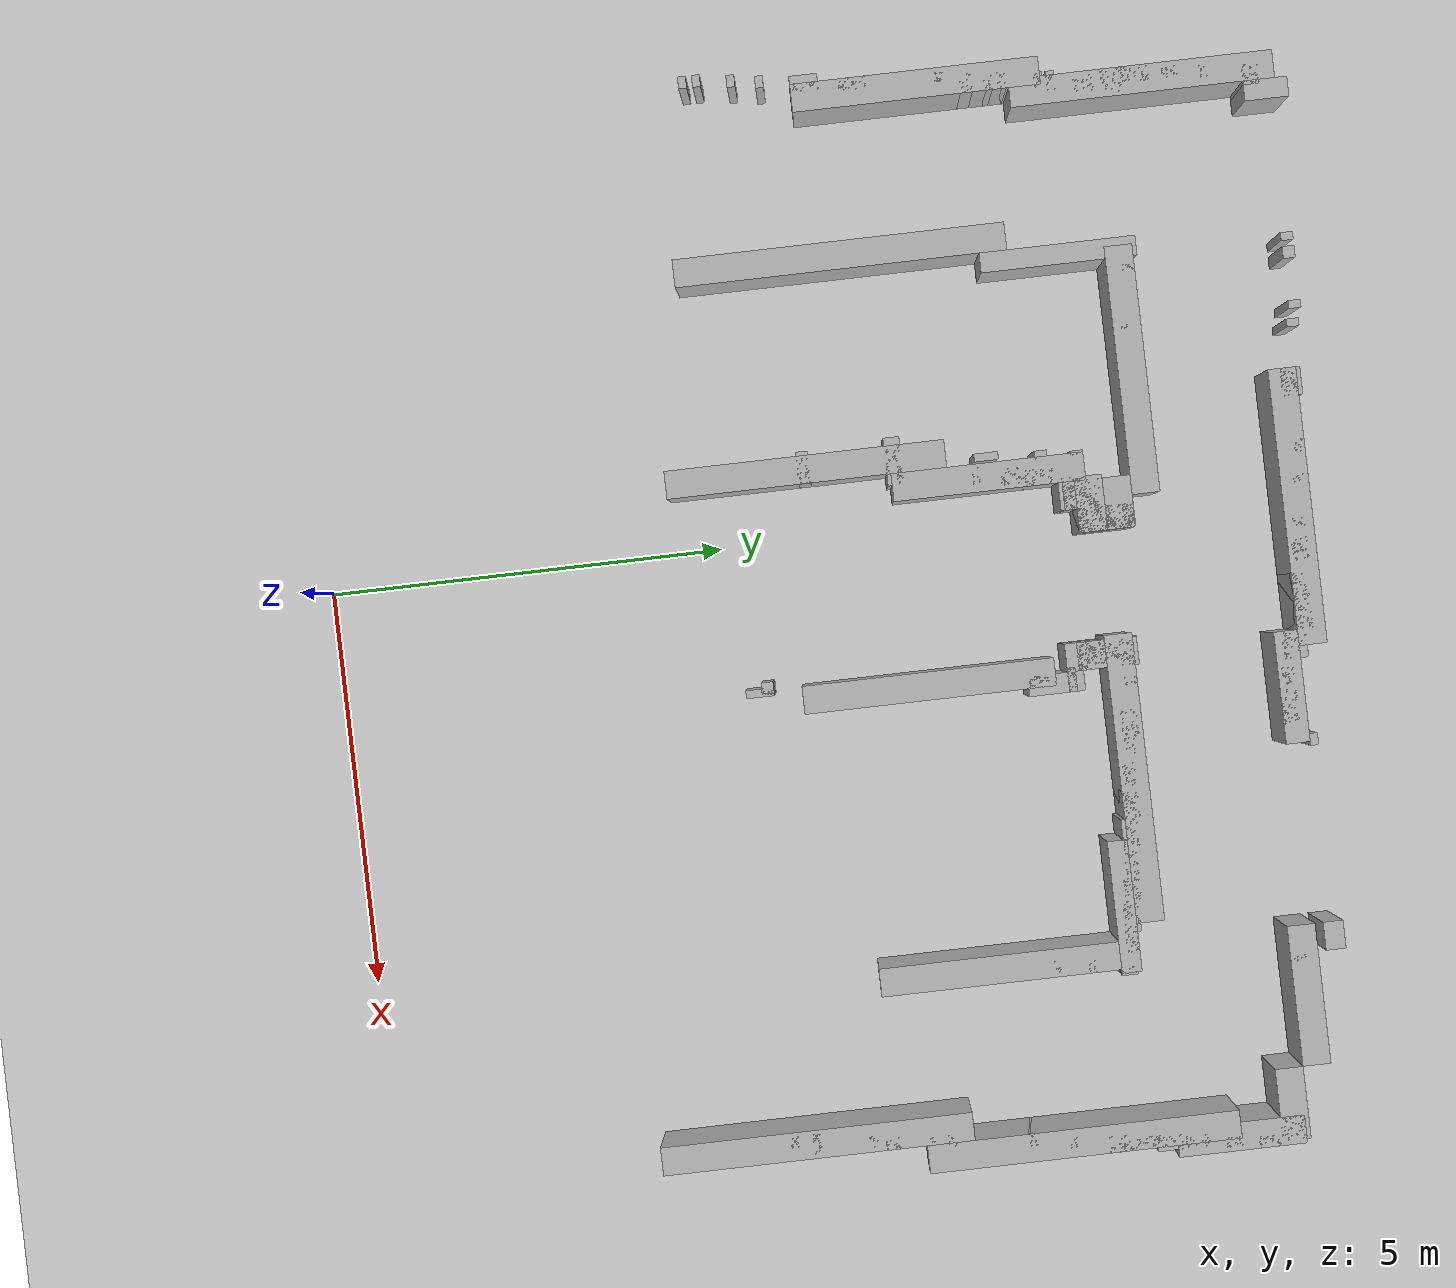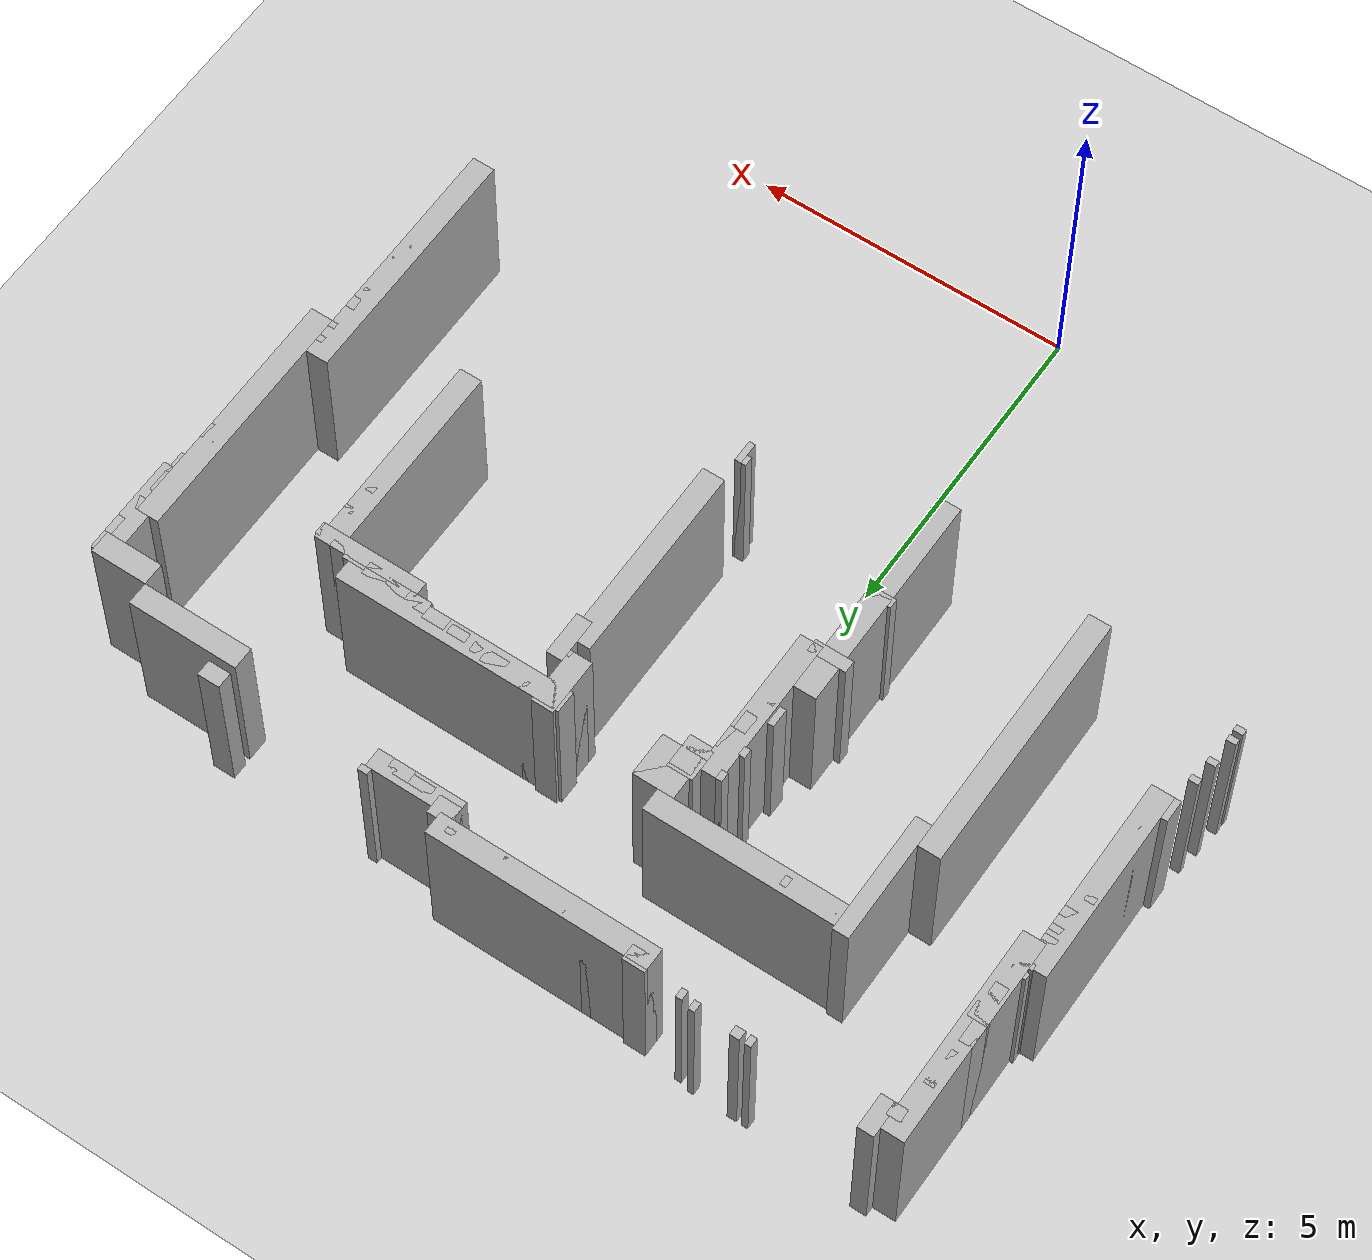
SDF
<sdf version="1.9">
 <world name="real_map_big_fix">
  <model name="ground_plane">
   <static>true</static>
   <link name="link">
    <collision name="collision">
     <geometry><plane><normal>0 0 1</normal><size>100 100</size></plane></geometry>
    </collision>
    <visual name="visual">
     <geometry><plane><normal>0 0 1</normal><size>100 100</size></plane></geometry>
     <material><ambient>0.8 0.8 0.8 1</ambient><diffuse>0.8 0.8 0.8 1</diffuse></material>
    </visual>
   </link>
  </model>
  <model name="wall_h_262">
   <static>true</static>
   <pose>0.3020 12.2120 1.2500 0 0 0</pose>
   <link name="link">
    <collision name="collision"><geometry><box><size>3.4500 0.3500 2.5000</size></box></geometry></collision>
    <visual name="visual">
     <geometry><box><size>3.4500 0.3500 2.5000</size></box></geometry>
     <material><ambient>0.7 0.7 0.7 1</ambient><diffuse>0.7 0.7 0.7 1</diffuse></material>
    </visual>
   </link>
  </model>
  <model name="wall_h_263">
   <static>true</static>
   <pose>-5.0980 12.2370 1.2500 0 0 0</pose>
   <link name="link">
    <collision name="collision"><geometry><box><size>0.2500 0.2000 2.5000</size></box></geometry></collision>
    <visual name="visual">
     <geometry><box><size>0.2500 0.2000 2.5000</size></box></geometry>
     <material><ambient>0.7 0.7 0.7 1</ambient><diffuse>0.7 0.7 0.7 1</diffuse></material>
    </visual>
   </link>
  </model>
  <model name="wall_h_264">
   <static>true</static>
   <pose>5.6520 12.0620 1.2500 0 0 0</pose>
   <link name="link">
    <collision name="collision"><geometry><box><size>0.3500 0.2500 2.5000</size></box></geometry></collision>
    <visual name="visual">
     <geometry><box><size>0.3500 0.2500 2.5000</size></box></geometry>
     <material><ambient>0.7 0.7 0.7 1</ambient><diffuse>0.7 0.7 0.7 1</diffuse></material>
    </visual>
   </link>
  </model>
  <model name="wall_h_265">
   <static>true</static>
   <pose>3.2020 12.0870 1.2500 0 0 0</pose>
   <link name="link">
    <collision name="collision"><geometry><box><size>0.1500 0.1000 2.5000</size></box></geometry></collision>
    <visual name="visual">
     <geometry><box><size>0.1500 0.1000 2.5000</size></box></geometry>
     <material><ambient>0.7 0.7 0.7 1</ambient><diffuse>0.7 0.7 0.7 1</diffuse></material>
    </visual>
   </link>
  </model>
  <model name="wall_h_266">
   <static>true</static>
   <pose>2.5270 11.8870 1.2500 0 0 0</pose>
   <link name="link">
    <collision name="collision"><geometry><box><size>1.4000 0.3000 2.5000</size></box></geometry></collision>
    <visual name="visual">
     <geometry><box><size>1.4000 0.3000 2.5000</size></box></geometry>
     <material><ambient>0.7 0.7 0.7 1</ambient><diffuse>0.7 0.7 0.7 1</diffuse></material>
    </visual>
   </link>
  </model>
  <model name="wall_h_267">
   <static>true</static>
   <pose>6.3520 11.6620 1.2500 0 0 0</pose>
   <link name="link">
    <collision name="collision"><geometry><box><size>1.7500 0.3500 2.5000</size></box></geometry></collision>
    <visual name="visual">
     <geometry><box><size>1.7500 0.3500 2.5000</size></box></geometry>
     <material><ambient>0.7 0.7 0.7 1</ambient><diffuse>0.7 0.7 0.7 1</diffuse></material>
    </visual>
   </link>
  </model>
  <model name="wall_h_268">
   <static>true</static>
   <pose>-5.1980 11.6620 1.2500 0 0 0</pose>
   <link name="link">
    <collision name="collision"><geometry><box><size>0.1500 0.1000 2.5000</size></box></geometry></collision>
    <visual name="visual">
     <geometry><box><size>0.1500 0.1000 2.5000</size></box></geometry>
     <material><ambient>0.7 0.7 0.7 1</ambient><diffuse>0.7 0.7 0.7 1</diffuse></material>
    </visual>
   </link>
  </model>
  <model name="wall_h_269">
   <static>true</static>
   <pose>7.6770 11.3120 1.2500 0 0 0</pose>
   <link name="link">
    <collision name="collision"><geometry><box><size>0.9000 0.3500 2.5000</size></box></geometry></collision>
    <visual name="visual">
     <geometry><box><size>0.9000 0.3500 2.5000</size></box></geometry>
     <material><ambient>0.7 0.7 0.7 1</ambient><diffuse>0.7 0.7 0.7 1</diffuse></material>
    </visual>
   </link>
  </model>
  <model name="wall_h_270">
   <static>true</static>
   <pose>-5.2480 11.2370 1.2500 0 0 0</pose>
   <link name="link">
    <collision name="collision"><geometry><box><size>0.1500 0.2000 2.5000</size></box></geometry></collision>
    <visual name="visual">
     <geometry><box><size>0.1500 0.2000 2.5000</size></box></geometry>
     <material><ambient>0.7 0.7 0.7 1</ambient><diffuse>0.7 0.7 0.7 1</diffuse></material>
    </visual>
   </link>
  </model>
  <model name="wall_h_271">
   <static>true</static>
   <pose>8.1020 10.9870 1.2500 0 0 0</pose>
   <link name="link">
    <collision name="collision"><geometry><box><size>0.1500 0.3000 2.5000</size></box></geometry></collision>
    <visual name="visual">
     <geometry><box><size>0.1500 0.3000 2.5000</size></box></geometry>
     <material><ambient>0.7 0.7 0.7 1</ambient><diffuse>0.7 0.7 0.7 1</diffuse></material>
    </visual>
   </link>
  </model>
  <model name="wall_h_272">
   <static>true</static>
   <pose>-5.2730 10.8120 1.2500 0 0 0</pose>
   <link name="link">
    <collision name="collision"><geometry><box><size>0.2000 0.3500 2.5000</size></box></geometry></collision>
    <visual name="visual">
     <geometry><box><size>0.2000 0.3500 2.5000</size></box></geometry>
     <material><ambient>0.7 0.7 0.7 1</ambient><diffuse>0.7 0.7 0.7 1</diffuse></material>
    </visual>
   </link>
  </model>
  <model name="wall_h_273">
   <static>true</static>
   <pose>-5.2230 10.5120 1.2500 0 0 0</pose>
   <link name="link">
    <collision name="collision"><geometry><box><size>0.3000 0.2500 2.5000</size></box></geometry></collision>
    <visual name="visual">
     <geometry><box><size>0.3000 0.2500 2.5000</size></box></geometry>
     <material><ambient>0.7 0.7 0.7 1</ambient><diffuse>0.7 0.7 0.7 1</diffuse></material>
    </visual>
   </link>
  </model>
  <model name="wall_h_274">
   <static>true</static>
   <pose>8.0520 10.5370 1.2500 0 0 0</pose>
   <link name="link">
    <collision name="collision"><geometry><box><size>0.1500 0.2000 2.5000</size></box></geometry></collision>
    <visual name="visual">
     <geometry><box><size>0.1500 0.2000 2.5000</size></box></geometry>
     <material><ambient>0.7 0.7 0.7 1</ambient><diffuse>0.7 0.7 0.7 1</diffuse></material>
    </visual>
   </link>
  </model>
  <model name="wall_h_275">
   <static>true</static>
   <pose>-1.6230 10.3620 1.2500 0 0 0</pose>
   <link name="link">
    <collision name="collision"><geometry><box><size>3.1000 0.3500 2.5000</size></box></geometry></collision>
    <visual name="visual">
     <geometry><box><size>3.1000 0.3500 2.5000</size></box></geometry>
     <material><ambient>0.7 0.7 0.7 1</ambient><diffuse>0.7 0.7 0.7 1</diffuse></material>
    </visual>
   </link>
  </model>
  <model name="wall_h_276">
   <static>true</static>
   <pose>-5.2230 10.1620 1.2500 0 0 0</pose>
   <link name="link">
    <collision name="collision"><geometry><box><size>0.2000 0.2500 2.5000</size></box></geometry></collision>
    <visual name="visual">
     <geometry><box><size>0.2000 0.2500 2.5000</size></box></geometry>
     <material><ambient>0.7 0.7 0.7 1</ambient><diffuse>0.7 0.7 0.7 1</diffuse></material>
    </visual>
   </link>
  </model>
  <model name="wall_h_277">
   <static>true</static>
   <pose>8.0020 10.1120 1.2500 0 0 0</pose>
   <link name="link">
    <collision name="collision"><geometry><box><size>0.1500 0.3500 2.5000</size></box></geometry></collision>
    <visual name="visual">
     <geometry><box><size>0.1500 0.3500 2.5000</size></box></geometry>
     <material><ambient>0.7 0.7 0.7 1</ambient><diffuse>0.7 0.7 0.7 1</diffuse></material>
    </visual>
   </link>
  </model>
  <model name="wall_h_278">
   <static>true</static>
   <pose>0.0020 10.0120 1.2500 0 0 0</pose>
   <link name="link">
    <collision name="collision"><geometry><box><size>0.6500 0.3500 2.5000</size></box></geometry></collision>
    <visual name="visual">
     <geometry><box><size>0.6500 0.3500 2.5000</size></box></geometry>
     <material><ambient>0.7 0.7 0.7 1</ambient><diffuse>0.7 0.7 0.7 1</diffuse></material>
    </visual>
   </link>
  </model>
  <model name="wall_h_279">
   <static>true</static>
   <pose>3.4270 9.8120 1.2500 0 0 0</pose>
   <link name="link">
    <collision name="collision"><geometry><box><size>3.6000 0.3500 2.5000</size></box></geometry></collision>
    <visual name="visual">
     <geometry><box><size>3.6000 0.3500 2.5000</size></box></geometry>
     <material><ambient>0.7 0.7 0.7 1</ambient><diffuse>0.7 0.7 0.7 1</diffuse></material>
    </visual>
   </link>
  </model>
  <model name="wall_h_280">
   <static>true</static>
   <pose>7.9770 9.7620 1.2500 0 0 0</pose>
   <link name="link">
    <collision name="collision"><geometry><box><size>0.2000 0.3500 2.5000</size></box></geometry></collision>
    <visual name="visual">
     <geometry><box><size>0.2000 0.3500 2.5000</size></box></geometry>
     <material><ambient>0.7 0.7 0.7 1</ambient><diffuse>0.7 0.7 0.7 1</diffuse></material>
    </visual>
   </link>
  </model>
  <model name="wall_h_281">
   <static>true</static>
   <pose>-0.0230 9.6620 1.2500 0 0 0</pose>
   <link name="link">
    <collision name="collision"><geometry><box><size>0.7000 0.3500 2.5000</size></box></geometry></collision>
    <visual name="visual">
     <geometry><box><size>0.7000 0.3500 2.5000</size></box></geometry>
     <material><ambient>0.7 0.7 0.7 1</ambient><diffuse>0.7 0.7 0.7 1</diffuse></material>
    </visual>
   </link>
  </model>
  <model name="wall_h_282">
   <static>true</static>
   <pose>-5.2980 9.7620 1.2500 0 0 0</pose>
   <link name="link">
    <collision name="collision"><geometry><box><size>0.2500 0.1000 2.5000</size></box></geometry></collision>
    <visual name="visual">
     <geometry><box><size>0.2500 0.1000 2.5000</size></box></geometry>
     <material><ambient>0.7 0.7 0.7 1</ambient><diffuse>0.7 0.7 0.7 1</diffuse></material>
    </visual>
   </link>
  </model>
  <model name="wall_h_283">
   <static>true</static>
   <pose>-5.3230 9.6120 1.2500 0 0 0</pose>
   <link name="link">
    <collision name="collision"><geometry><box><size>0.2000 0.1000 2.5000</size></box></geometry></collision>
    <visual name="visual">
     <geometry><box><size>0.2000 0.1000 2.5000</size></box></geometry>
     <material><ambient>0.7 0.7 0.7 1</ambient><diffuse>0.7 0.7 0.7 1</diffuse></material>
    </visual>
   </link>
  </model>
  <model name="wall_h_284">
   <static>true</static>
   <pose>1.8520 9.4620 1.2500 0 0 0</pose>
   <link name="link">
    <collision name="collision"><geometry><box><size>0.3500 0.3500 2.5000</size></box></geometry></collision>
    <visual name="visual">
     <geometry><box><size>0.3500 0.3500 2.5000</size></box></geometry>
     <material><ambient>0.7 0.7 0.7 1</ambient><diffuse>0.7 0.7 0.7 1</diffuse></material>
    </visual>
   </link>
  </model>
  <model name="wall_h_285">
   <static>true</static>
   <pose>5.0020 9.5120 1.2500 0 0 0</pose>
   <link name="link">
    <collision name="collision"><geometry><box><size>1.6500 0.2500 2.5000</size></box></geometry></collision>
    <visual name="visual">
     <geometry><box><size>1.6500 0.2500 2.5000</size></box></geometry>
     <material><ambient>0.7 0.7 0.7 1</ambient><diffuse>0.7 0.7 0.7 1</diffuse></material>
    </visual>
   </link>
  </model>
  <model name="wall_h_286">
   <static>true</static>
   <pose>7.9520 9.4120 1.2500 0 0 0</pose>
   <link name="link">
    <collision name="collision"><geometry><box><size>0.1500 0.3500 2.5000</size></box></geometry></collision>
    <visual name="visual">
     <geometry><box><size>0.1500 0.3500 2.5000</size></box></geometry>
     <material><ambient>0.7 0.7 0.7 1</ambient><diffuse>0.7 0.7 0.7 1</diffuse></material>
    </visual>
   </link>
  </model>
  <model name="wall_h_287">
   <static>true</static>
   <pose>-0.1730 9.4120 1.2500 0 0 0</pose>
   <link name="link">
    <collision name="collision"><geometry><box><size>0.4000 0.1500 2.5000</size></box></geometry></collision>
    <visual name="visual">
     <geometry><box><size>0.4000 0.1500 2.5000</size></box></geometry>
     <material><ambient>0.7 0.7 0.7 1</ambient><diffuse>0.7 0.7 0.7 1</diffuse></material>
    </visual>
   </link>
  </model>
  <model name="wall_h_288">
   <static>true</static>
   <pose>-0.4230 9.0620 1.2500 0 0 0</pose>
   <link name="link">
    <collision name="collision"><geometry><box><size>0.2000 0.3500 2.5000</size></box></geometry></collision>
    <visual name="visual">
     <geometry><box><size>0.2000 0.3500 2.5000</size></box></geometry>
     <material><ambient>0.7 0.7 0.7 1</ambient><diffuse>0.7 0.7 0.7 1</diffuse></material>
    </visual>
   </link>
  </model>
  <model name="wall_h_289">
   <static>true</static>
   <pose>2.1270 9.1870 1.2500 0 0 0</pose>
   <link name="link">
    <collision name="collision"><geometry><box><size>0.3000 0.1000 2.5000</size></box></geometry></collision>
    <visual name="visual">
     <geometry><box><size>0.3000 0.1000 2.5000</size></box></geometry>
     <material><ambient>0.7 0.7 0.7 1</ambient><diffuse>0.7 0.7 0.7 1</diffuse></material>
    </visual>
   </link>
  </model>
  <model name="wall_h_290">
   <static>true</static>
   <pose>7.9270 9.1120 1.2500 0 0 0</pose>
   <link name="link">
    <collision name="collision"><geometry><box><size>0.2000 0.2500 2.5000</size></box></geometry></collision>
    <visual name="visual">
     <geometry><box><size>0.2000 0.2500 2.5000</size></box></geometry>
     <material><ambient>0.7 0.7 0.7 1</ambient><diffuse>0.7 0.7 0.7 1</diffuse></material>
    </visual>
   </link>
  </model>
  <model name="wall_h_291">
   <static>true</static>
   <pose>-5.3730 9.1620 1.2500 0 0 0</pose>
   <link name="link">
    <collision name="collision"><geometry><box><size>0.2000 0.1000 2.5000</size></box></geometry></collision>
    <visual name="visual">
     <geometry><box><size>0.2000 0.1000 2.5000</size></box></geometry>
     <material><ambient>0.7 0.7 0.7 1</ambient><diffuse>0.7 0.7 0.7 1</diffuse></material>
    </visual>
   </link>
  </model>
  <model name="wall_h_292">
   <static>true</static>
   <pose>5.7020 9.0370 1.2500 0 0 0</pose>
   <link name="link">
    <collision name="collision"><geometry><box><size>0.1500 0.1000 2.5000</size></box></geometry></collision>
    <visual name="visual">
     <geometry><box><size>0.1500 0.1000 2.5000</size></box></geometry>
     <material><ambient>0.7 0.7 0.7 1</ambient><diffuse>0.7 0.7 0.7 1</diffuse></material>
    </visual>
   </link>
  </model>
  <model name="wall_h_293">
   <static>true</static>
   <pose>-5.3730 8.9870 1.2500 0 0 0</pose>
   <link name="link">
    <collision name="collision"><geometry><box><size>0.2000 0.1000 2.5000</size></box></geometry></collision>
    <visual name="visual">
     <geometry><box><size>0.2000 0.1000 2.5000</size></box></geometry>
     <material><ambient>0.7 0.7 0.7 1</ambient><diffuse>0.7 0.7 0.7 1</diffuse></material>
    </visual>
   </link>
  </model>
  <model name="wall_h_294">
   <static>true</static>
   <pose>-0.4730 8.7370 1.2500 0 0 0</pose>
   <link name="link">
    <collision name="collision"><geometry><box><size>0.2000 0.3000 2.5000</size></box></geometry></collision>
    <visual name="visual">
     <geometry><box><size>0.2000 0.3000 2.5000</size></box></geometry>
     <material><ambient>0.7 0.7 0.7 1</ambient><diffuse>0.7 0.7 0.7 1</diffuse></material>
    </visual>
   </link>
  </model>
  <model name="wall_h_295">
   <static>true</static>
   <pose>-5.3980 8.7120 1.2500 0 0 0</pose>
   <link name="link">
    <collision name="collision"><geometry><box><size>0.2500 0.1500 2.5000</size></box></geometry></collision>
    <visual name="visual">
     <geometry><box><size>0.2500 0.1500 2.5000</size></box></geometry>
     <material><ambient>0.7 0.7 0.7 1</ambient><diffuse>0.7 0.7 0.7 1</diffuse></material>
    </visual>
   </link>
  </model>
  <model name="wall_h_296">
   <static>true</static>
   <pose>5.6520 8.6120 1.2500 0 0 0</pose>
   <link name="link">
    <collision name="collision"><geometry><box><size>0.1500 0.1000 2.5000</size></box></geometry></collision>
    <visual name="visual">
     <geometry><box><size>0.1500 0.1000 2.5000</size></box></geometry>
     <material><ambient>0.7 0.7 0.7 1</ambient><diffuse>0.7 0.7 0.7 1</diffuse></material>
    </visual>
   </link>
  </model>
  <model name="wall_h_297">
   <static>true</static>
   <pose>7.8520 8.5620 1.2500 0 0 0</pose>
   <link name="link">
    <collision name="collision"><geometry><box><size>0.1500 0.1000 2.5000</size></box></geometry></collision>
    <visual name="visual">
     <geometry><box><size>0.1500 0.1000 2.5000</size></box></geometry>
     <material><ambient>0.7 0.7 0.7 1</ambient><diffuse>0.7 0.7 0.7 1</diffuse></material>
    </visual>
   </link>
  </model>
  <model name="wall_h_298">
   <static>true</static>
   <pose>-5.4980 8.3870 1.2500 0 0 0</pose>
   <link name="link">
    <collision name="collision"><geometry><box><size>0.1500 0.1000 2.5000</size></box></geometry></collision>
    <visual name="visual">
     <geometry><box><size>0.1500 0.1000 2.5000</size></box></geometry>
     <material><ambient>0.7 0.7 0.7 1</ambient><diffuse>0.7 0.7 0.7 1</diffuse></material>
    </visual>
   </link>
  </model>
  <model name="wall_h_299">
   <static>true</static>
   <pose>-0.5230 8.2870 1.2500 0 0 0</pose>
   <link name="link">
    <collision name="collision"><geometry><box><size>0.2000 0.1000 2.5000</size></box></geometry></collision>
    <visual name="visual">
     <geometry><box><size>0.2000 0.1000 2.5000</size></box></geometry>
     <material><ambient>0.7 0.7 0.7 1</ambient><diffuse>0.7 0.7 0.7 1</diffuse></material>
    </visual>
   </link>
  </model>
  <model name="wall_h_300">
   <static>true</static>
   <pose>7.7520 8.0620 1.2500 0 0 0</pose>
   <link name="link">
    <collision name="collision"><geometry><box><size>0.1500 0.1000 2.5000</size></box></geometry></collision>
    <visual name="visual">
     <geometry><box><size>0.1500 0.1000 2.5000</size></box></geometry>
     <material><ambient>0.7 0.7 0.7 1</ambient><diffuse>0.7 0.7 0.7 1</diffuse></material>
    </visual>
   </link>
  </model>
  <model name="wall_h_301">
   <static>true</static>
   <pose>-5.5480 7.3120 1.2500 0 0 0</pose>
   <link name="link">
    <collision name="collision"><geometry><box><size>0.1500 0.3500 2.5000</size></box></geometry></collision>
    <visual name="visual">
     <geometry><box><size>0.1500 0.3500 2.5000</size></box></geometry>
     <material><ambient>0.7 0.7 0.7 1</ambient><diffuse>0.7 0.7 0.7 1</diffuse></material>
    </visual>
   </link>
  </model>
  <model name="wall_h_302">
   <static>true</static>
   <pose>-0.8230 7.2870 1.2500 0 0 0</pose>
   <link name="link">
    <collision name="collision"><geometry><box><size>0.6000 0.2000 2.5000</size></box></geometry></collision>
    <visual name="visual">
     <geometry><box><size>0.6000 0.2000 2.5000</size></box></geometry>
     <material><ambient>0.7 0.7 0.7 1</ambient><diffuse>0.7 0.7 0.7 1</diffuse></material>
    </visual>
   </link>
  </model>
  <model name="wall_h_303">
   <static>true</static>
   <pose>7.6520 7.0620 1.2500 0 0 0</pose>
   <link name="link">
    <collision name="collision"><geometry><box><size>0.1500 0.1000 2.5000</size></box></geometry></collision>
    <visual name="visual">
     <geometry><box><size>0.1500 0.1000 2.5000</size></box></geometry>
     <material><ambient>0.7 0.7 0.7 1</ambient><diffuse>0.7 0.7 0.7 1</diffuse></material>
    </visual>
   </link>
  </model>
  <model name="wall_h_304">
   <static>true</static>
   <pose>-5.6230 6.7120 1.2500 0 0 0</pose>
   <link name="link">
    <collision name="collision"><geometry><box><size>0.2000 0.3500 2.5000</size></box></geometry></collision>
    <visual name="visual">
     <geometry><box><size>0.2000 0.3500 2.5000</size></box></geometry>
     <material><ambient>0.7 0.7 0.7 1</ambient><diffuse>0.7 0.7 0.7 1</diffuse></material>
    </visual>
   </link>
  </model>
  <model name="wall_h_305">
   <static>true</static>
   <pose>7.6520 6.7870 1.2500 0 0 0</pose>
   <link name="link">
    <collision name="collision"><geometry><box><size>0.1500 0.1000 2.5000</size></box></geometry></collision>
    <visual name="visual">
     <geometry><box><size>0.1500 0.1000 2.5000</size></box></geometry>
     <material><ambient>0.7 0.7 0.7 1</ambient><diffuse>0.7 0.7 0.7 1</diffuse></material>
    </visual>
   </link>
  </model>
  <model name="wall_h_306">
   <static>true</static>
   <pose>7.6020 6.3370 1.2500 0 0 0</pose>
   <link name="link">
    <collision name="collision"><geometry><box><size>0.1500 0.2000 2.5000</size></box></geometry></collision>
    <visual name="visual">
     <geometry><box><size>0.1500 0.2000 2.5000</size></box></geometry>
     <material><ambient>0.7 0.7 0.7 1</ambient><diffuse>0.7 0.7 0.7 1</diffuse></material>
    </visual>
   </link>
  </model>
  <model name="wall_h_307">
   <static>true</static>
   <pose>-0.8730 6.1620 1.2500 0 0 0</pose>
   <link name="link">
    <collision name="collision"><geometry><box><size>0.4000 0.1500 2.5000</size></box></geometry></collision>
    <visual name="visual">
     <geometry><box><size>0.4000 0.1500 2.5000</size></box></geometry>
     <material><ambient>0.7 0.7 0.7 1</ambient><diffuse>0.7 0.7 0.7 1</diffuse></material>
    </visual>
   </link>
  </model>
  <model name="wall_h_308">
   <static>true</static>
   <pose>-5.6980 6.1620 1.2500 0 0 0</pose>
   <link name="link">
    <collision name="collision"><geometry><box><size>0.1500 0.1000 2.5000</size></box></geometry></collision>
    <visual name="visual">
     <geometry><box><size>0.1500 0.1000 2.5000</size></box></geometry>
     <material><ambient>0.7 0.7 0.7 1</ambient><diffuse>0.7 0.7 0.7 1</diffuse></material>
    </visual>
   </link>
  </model>
  <model name="wall_h_309">
   <static>true</static>
   <pose>7.5520 6.0870 1.2500 0 0 0</pose>
   <link name="link">
    <collision name="collision"><geometry><box><size>0.1500 0.1000 2.5000</size></box></geometry></collision>
    <visual name="visual">
     <geometry><box><size>0.1500 0.1000 2.5000</size></box></geometry>
     <material><ambient>0.7 0.7 0.7 1</ambient><diffuse>0.7 0.7 0.7 1</diffuse></material>
    </visual>
   </link>
  </model>
  <model name="wall_h_310">
   <static>true</static>
   <pose>-5.7480 5.8120 1.2500 0 0 0</pose>
   <link name="link">
    <collision name="collision"><geometry><box><size>0.1500 0.1000 2.5000</size></box></geometry></collision>
    <visual name="visual">
     <geometry><box><size>0.1500 0.1000 2.5000</size></box></geometry>
     <material><ambient>0.7 0.7 0.7 1</ambient><diffuse>0.7 0.7 0.7 1</diffuse></material>
    </visual>
   </link>
  </model>
  <model name="wall_h_311">
   <static>true</static>
   <pose>1.8020 5.4120 1.2500 0 0 0</pose>
   <link name="link">
    <collision name="collision"><geometry><box><size>0.1500 0.1500 2.5000</size></box></geometry></collision>
    <visual name="visual">
     <geometry><box><size>0.1500 0.1500 2.5000</size></box></geometry>
     <material><ambient>0.7 0.7 0.7 1</ambient><diffuse>0.7 0.7 0.7 1</diffuse></material>
    </visual>
   </link>
  </model>
  <model name="wall_h_312">
   <static>true</static>
   <pose>-5.7980 5.3870 1.2500 0 0 0</pose>
   <link name="link">
    <collision name="collision"><geometry><box><size>0.1500 0.1000 2.5000</size></box></geometry></collision>
    <visual name="visual">
     <geometry><box><size>0.1500 0.1000 2.5000</size></box></geometry>
     <material><ambient>0.7 0.7 0.7 1</ambient><diffuse>0.7 0.7 0.7 1</diffuse></material>
    </visual>
   </link>
  </model>
  <model name="wall_h_313">
   <static>true</static>
   <pose>7.5020 5.3870 1.2500 0 0 0</pose>
   <link name="link">
    <collision name="collision"><geometry><box><size>0.2500 0.1000 2.5000</size></box></geometry></collision>
    <visual name="visual">
     <geometry><box><size>0.2500 0.1000 2.5000</size></box></geometry>
     <material><ambient>0.7 0.7 0.7 1</ambient><diffuse>0.7 0.7 0.7 1</diffuse></material>
    </visual>
   </link>
  </model>
  <model name="wall_h_314">
   <static>true</static>
   <pose>-5.7980 5.2120 1.2500 0 0 0</pose>
   <link name="link">
    <collision name="collision"><geometry><box><size>0.1500 0.1000 2.5000</size></box></geometry></collision>
    <visual name="visual">
     <geometry><box><size>0.1500 0.1000 2.5000</size></box></geometry>
     <material><ambient>0.7 0.7 0.7 1</ambient><diffuse>0.7 0.7 0.7 1</diffuse></material>
    </visual>
   </link>
  </model>
  <model name="wall_h_316">
   <static>true</static>
   <pose>7.4520 5.1120 1.2500 0 0 0</pose>
   <link name="link">
    <collision name="collision"><geometry><box><size>0.1500 0.1000 2.5000</size></box></geometry></collision>
    <visual name="visual">
     <geometry><box><size>0.1500 0.1000 2.5000</size></box></geometry>
     <material><ambient>0.7 0.7 0.7 1</ambient><diffuse>0.7 0.7 0.7 1</diffuse></material>
    </visual>
   </link>
  </model>
  <model name="wall_v_005">
   <static>true</static>
   <pose>-5.4480 8.0870 1.2500 0 0 0</pose>
   <link name="link">
    <collision name="collision"><geometry><box><size>0.3500 3.1000 2.5000</size></box></geometry></collision>
    <visual name="visual">
     <geometry><box><size>0.3500 3.1000 2.5000</size></box></geometry>
     <material><ambient>0.7 0.7 0.7 1</ambient><diffuse>0.7 0.7 0.7 1</diffuse></material>
    </visual>
   </link>
  </model>
  <model name="wall_v_007">
   <static>true</static>
   <pose>-5.1980 10.8870 1.2500 0 0 0</pose>
   <link name="link">
    <collision name="collision"><geometry><box><size>0.3500 3.3000 2.5000</size></box></geometry></collision>
    <visual name="visual">
     <geometry><box><size>0.3500 3.3000 2.5000</size></box></geometry>
     <material><ambient>0.7 0.7 0.7 1</ambient><diffuse>0.7 0.7 0.7 1</diffuse></material>
    </visual>
   </link>
  </model>
  <model name="wall_v_009">
   <static>true</static>
   <pose>-4.8980 12.4120 1.2500 0 0 0</pose>
   <link name="link">
    <collision name="collision"><geometry><box><size>0.2500 0.5500 2.5000</size></box></geometry></collision>
    <visual name="visual">
     <geometry><box><size>0.2500 0.5500 2.5000</size></box></geometry>
     <material><ambient>0.7 0.7 0.7 1</ambient><diffuse>0.7 0.7 0.7 1</diffuse></material>
    </visual>
   </link>
  </model>
  <model name="wall_v_018">
   <static>true</static>
   <pose>-3.4480 6.9120 1.2500 0 0 0</pose>
   <link name="link">
    <collision name="collision"><geometry><box><size>0.3500 4.1500 2.5000</size></box></geometry></collision>
    <visual name="visual">
     <geometry><box><size>0.3500 4.1500 2.5000</size></box></geometry>
     <material><ambient>0.7 0.7 0.7 1</ambient><diffuse>0.7 0.7 0.7 1</diffuse></material>
    </visual>
   </link>
  </model>
  <model name="wall_v_021">
   <static>true</static>
   <pose>-3.1480 9.6120 1.2500 0 0 0</pose>
   <link name="link">
    <collision name="collision"><geometry><box><size>0.2500 1.9500 2.5000</size></box></geometry></collision>
    <visual name="visual">
     <geometry><box><size>0.2500 1.9500 2.5000</size></box></geometry>
     <material><ambient>0.7 0.7 0.7 1</ambient><diffuse>0.7 0.7 0.7 1</diffuse></material>
    </visual>
   </link>
  </model>
  <model name="wall_v_023">
   <static>true</static>
   <pose>-3.0480 12.4620 1.2500 0 0 0</pose>
   <link name="link">
    <collision name="collision"><geometry><box><size>0.1000 0.1500 2.5000</size></box></geometry></collision>
    <visual name="visual">
     <geometry><box><size>0.1000 0.1500 2.5000</size></box></geometry>
     <material><ambient>0.7 0.7 0.7 1</ambient><diffuse>0.7 0.7 0.7 1</diffuse></material>
    </visual>
   </link>
  </model>
  <model name="wall_v_025">
   <static>true</static>
   <pose>-2.8480 12.4620 1.2500 0 0 0</pose>
   <link name="link">
    <collision name="collision"><geometry><box><size>0.1500 0.1500 2.5000</size></box></geometry></collision>
    <visual name="visual">
     <geometry><box><size>0.1500 0.1500 2.5000</size></box></geometry>
     <material><ambient>0.7 0.7 0.7 1</ambient><diffuse>0.7 0.7 0.7 1</diffuse></material>
    </visual>
   </link>
  </model>
  <model name="wall_v_026">
   <static>true</static>
   <pose>-2.8980 10.4620 1.2500 0 0 0</pose>
   <link name="link">
    <collision name="collision"><geometry><box><size>0.1000 0.1500 2.5000</size></box></geometry></collision>
    <visual name="visual">
     <geometry><box><size>0.1000 0.1500 2.5000</size></box></geometry>
     <material><ambient>0.7 0.7 0.7 1</ambient><diffuse>0.7 0.7 0.7 1</diffuse></material>
    </visual>
   </link>
  </model>
  <model name="wall_v_028">
   <static>true</static>
   <pose>-2.1980 12.4620 1.2500 0 0 0</pose>
   <link name="link">
    <collision name="collision"><geometry><box><size>0.1000 0.1500 2.5000</size></box></geometry></collision>
    <visual name="visual">
     <geometry><box><size>0.1000 0.1500 2.5000</size></box></geometry>
     <material><ambient>0.7 0.7 0.7 1</ambient><diffuse>0.7 0.7 0.7 1</diffuse></material>
    </visual>
   </link>
  </model>
  <model name="wall_v_029">
   <static>true</static>
   <pose>-2.1730 10.3620 1.2500 0 0 0</pose>
   <link name="link">
    <collision name="collision"><geometry><box><size>0.1000 0.1500 2.5000</size></box></geometry></collision>
    <visual name="visual">
     <geometry><box><size>0.1000 0.1500 2.5000</size></box></geometry>
     <material><ambient>0.7 0.7 0.7 1</ambient><diffuse>0.7 0.7 0.7 1</diffuse></material>
    </visual>
   </link>
  </model>
  <model name="wall_v_031">
   <static>true</static>
   <pose>-1.9730 12.4120 1.2500 0 0 0</pose>
   <link name="link">
    <collision name="collision"><geometry><box><size>0.1000 0.1500 2.5000</size></box></geometry></collision>
    <visual name="visual">
     <geometry><box><size>0.1000 0.1500 2.5000</size></box></geometry>
     <material><ambient>0.7 0.7 0.7 1</ambient><diffuse>0.7 0.7 0.7 1</diffuse></material>
    </visual>
   </link>
  </model>
  <model name="wall_v_034">
   <static>true</static>
   <pose>-1.2480 12.3120 1.2500 0 0 0</pose>
   <link name="link">
    <collision name="collision"><geometry><box><size>0.3500 0.2500 2.5000</size></box></geometry></collision>
    <visual name="visual">
     <geometry><box><size>0.3500 0.2500 2.5000</size></box></geometry>
     <material><ambient>0.7 0.7 0.7 1</ambient><diffuse>0.7 0.7 0.7 1</diffuse></material>
    </visual>
   </link>
  </model>
  <model name="wall_v_037">
   <static>true</static>
   <pose>-0.8480 6.1870 1.2500 0 0 0</pose>
   <link name="link">
    <collision name="collision"><geometry><box><size>0.3500 3.5000 2.5000</size></box></geometry></collision>
    <visual name="visual">
     <geometry><box><size>0.3500 3.5000 2.5000</size></box></geometry>
     <material><ambient>0.7 0.7 0.7 1</ambient><diffuse>0.7 0.7 0.7 1</diffuse></material>
    </visual>
   </link>
  </model>
  <model name="wall_v_039">
   <static>true</static>
   <pose>-0.7480 8.4370 1.2500 0 0 0</pose>
   <link name="link">
    <collision name="collision"><geometry><box><size>0.1000 0.3000 2.5000</size></box></geometry></collision>
    <visual name="visual">
     <geometry><box><size>0.1000 0.3000 2.5000</size></box></geometry>
     <material><ambient>0.7 0.7 0.7 1</ambient><diffuse>0.7 0.7 0.7 1</diffuse></material>
    </visual>
   </link>
  </model>
  <model name="wall_v_041">
   <static>true</static>
   <pose>-0.6980 9.1120 1.2500 0 0 0</pose>
   <link name="link">
    <collision name="collision"><geometry><box><size>0.1000 0.1500 2.5000</size></box></geometry></collision>
    <visual name="visual">
     <geometry><box><size>0.1000 0.1500 2.5000</size></box></geometry>
     <material><ambient>0.7 0.7 0.7 1</ambient><diffuse>0.7 0.7 0.7 1</diffuse></material>
    </visual>
   </link>
  </model>
  <model name="wall_v_042">
   <static>true</static>
   <pose>-0.6480 9.5620 1.2500 0 0 0</pose>
   <link name="link">
    <collision name="collision"><geometry><box><size>0.1000 0.1500 2.5000</size></box></geometry></collision>
    <visual name="visual">
     <geometry><box><size>0.1000 0.1500 2.5000</size></box></geometry>
     <material><ambient>0.7 0.7 0.7 1</ambient><diffuse>0.7 0.7 0.7 1</diffuse></material>
    </visual>
   </link>
  </model>
  <model name="wall_v_043">
   <static>true</static>
   <pose>-0.4980 8.4370 1.2500 0 0 0</pose>
   <link name="link">
    <collision name="collision"><geometry><box><size>0.3500 2.4000 2.5000</size></box></geometry></collision>
    <visual name="visual">
     <geometry><box><size>0.3500 2.4000 2.5000</size></box></geometry>
     <material><ambient>0.7 0.7 0.7 1</ambient><diffuse>0.7 0.7 0.7 1</diffuse></material>
    </visual>
   </link>
  </model>
  <model name="wall_v_045">
   <static>true</static>
   <pose>-0.4480 12.3120 1.2500 0 0 0</pose>
   <link name="link">
    <collision name="collision"><geometry><box><size>0.1500 0.1500 2.5000</size></box></geometry></collision>
    <visual name="visual">
     <geometry><box><size>0.1500 0.1500 2.5000</size></box></geometry>
     <material><ambient>0.7 0.7 0.7 1</ambient><diffuse>0.7 0.7 0.7 1</diffuse></material>
    </visual>
   </link>
  </model>
  <model name="wall_v_048">
   <static>true</static>
   <pose>-0.1480 9.5370 1.2500 0 0 0</pose>
   <link name="link">
    <collision name="collision"><geometry><box><size>0.3500 0.5000 2.5000</size></box></geometry></collision>
    <visual name="visual">
     <geometry><box><size>0.3500 0.5000 2.5000</size></box></geometry>
     <material><ambient>0.7 0.7 0.7 1</ambient><diffuse>0.7 0.7 0.7 1</diffuse></material>
    </visual>
   </link>
  </model>
  <model name="wall_v_050">
   <static>true</static>
   <pose>-0.0480 12.2620 1.2500 0 0 0</pose>
   <link name="link">
    <collision name="collision"><geometry><box><size>0.1000 0.1500 2.5000</size></box></geometry></collision>
    <visual name="visual">
     <geometry><box><size>0.1000 0.1500 2.5000</size></box></geometry>
     <material><ambient>0.7 0.7 0.7 1</ambient><diffuse>0.7 0.7 0.7 1</diffuse></material>
    </visual>
   </link>
  </model>
  <model name="wall_v_053">
   <static>true</static>
   <pose>0.1770 9.8370 1.2500 0 0 0</pose>
   <link name="link">
    <collision name="collision"><geometry><box><size>0.3000 0.7000 2.5000</size></box></geometry></collision>
    <visual name="visual">
     <geometry><box><size>0.3000 0.7000 2.5000</size></box></geometry>
     <material><ambient>0.7 0.7 0.7 1</ambient><diffuse>0.7 0.7 0.7 1</diffuse></material>
    </visual>
   </link>
  </model>
  <model name="wall_v_057">
   <static>true</static>
   <pose>0.5020 12.2120 1.2500 0 0 0</pose>
   <link name="link">
    <collision name="collision"><geometry><box><size>0.1000 0.1500 2.5000</size></box></geometry></collision>
    <visual name="visual">
     <geometry><box><size>0.1000 0.1500 2.5000</size></box></geometry>
     <material><ambient>0.7 0.7 0.7 1</ambient><diffuse>0.7 0.7 0.7 1</diffuse></material>
    </visual>
   </link>
  </model>
  <model name="wall_v_060">
   <static>true</static>
   <pose>0.8270 12.1870 1.2500 0 0 0</pose>
   <link name="link">
    <collision name="collision"><geometry><box><size>0.3000 0.2000 2.5000</size></box></geometry></collision>
    <visual name="visual">
     <geometry><box><size>0.3000 0.2000 2.5000</size></box></geometry>
     <material><ambient>0.7 0.7 0.7 1</ambient><diffuse>0.7 0.7 0.7 1</diffuse></material>
    </visual>
   </link>
  </model>
  <model name="wall_v_065">
   <static>true</static>
   <pose>1.3020 12.1370 1.2500 0 0 0</pose>
   <link name="link">
    <collision name="collision"><geometry><box><size>0.3500 0.2000 2.5000</size></box></geometry></collision>
    <visual name="visual">
     <geometry><box><size>0.3500 0.2000 2.5000</size></box></geometry>
     <material><ambient>0.7 0.7 0.7 1</ambient><diffuse>0.7 0.7 0.7 1</diffuse></material>
    </visual>
   </link>
  </model>
  <model name="wall_v_070">
   <static>true</static>
   <pose>1.6520 12.1370 1.2500 0 0 0</pose>
   <link name="link">
    <collision name="collision"><geometry><box><size>0.3500 0.2000 2.5000</size></box></geometry></collision>
    <visual name="visual">
     <geometry><box><size>0.3500 0.2000 2.5000</size></box></geometry>
     <material><ambient>0.7 0.7 0.7 1</ambient><diffuse>0.7 0.7 0.7 1</diffuse></material>
    </visual>
   </link>
  </model>
  <model name="wall_v_077">
   <static>true</static>
   <pose>1.8520 9.5870 1.2500 0 0 0</pose>
   <link name="link">
    <collision name="collision"><geometry><box><size>0.3500 0.9000 2.5000</size></box></geometry></collision>
    <visual name="visual">
     <geometry><box><size>0.3500 0.9000 2.5000</size></box></geometry>
     <material><ambient>0.7 0.7 0.7 1</ambient><diffuse>0.7 0.7 0.7 1</diffuse></material>
    </visual>
   </link>
  </model>
  <model name="wall_v_078">
   <static>true</static>
   <pose>2.0020 11.9870 1.2500 0 0 0</pose>
   <link name="link">
    <collision name="collision"><geometry><box><size>0.3500 0.3000 2.5000</size></box></geometry></collision>
    <visual name="visual">
     <geometry><box><size>0.3500 0.3000 2.5000</size></box></geometry>
     <material><ambient>0.7 0.7 0.7 1</ambient><diffuse>0.7 0.7 0.7 1</diffuse></material>
    </visual>
   </link>
  </model>
  <model name="wall_v_079">
   <static>true</static>
   <pose>2.0020 7.4120 1.2500 0 0 0</pose>
   <link name="link">
    <collision name="collision"><geometry><box><size>0.3500 3.1500 2.5000</size></box></geometry></collision>
    <visual name="visual">
     <geometry><box><size>0.3500 3.1500 2.5000</size></box></geometry>
     <material><ambient>0.7 0.7 0.7 1</ambient><diffuse>0.7 0.7 0.7 1</diffuse></material>
    </visual>
   </link>
  </model>
  <model name="wall_v_080">
   <static>true</static>
   <pose>1.8520 5.3120 1.2500 0 0 0</pose>
   <link name="link">
    <collision name="collision"><geometry><box><size>0.1000 0.3500 2.5000</size></box></geometry></collision>
    <visual name="visual">
     <geometry><box><size>0.1000 0.3500 2.5000</size></box></geometry>
     <material><ambient>0.7 0.7 0.7 1</ambient><diffuse>0.7 0.7 0.7 1</diffuse></material>
    </visual>
   </link>
  </model>
  <model name="wall_v_087">
   <static>true</static>
   <pose>2.1520 8.9870 1.2500 0 0 0</pose>
   <link name="link">
    <collision name="collision"><geometry><box><size>0.2500 0.7000 2.5000</size></box></geometry></collision>
    <visual name="visual">
     <geometry><box><size>0.2500 0.7000 2.5000</size></box></geometry>
     <material><ambient>0.7 0.7 0.7 1</ambient><diffuse>0.7 0.7 0.7 1</diffuse></material>
    </visual>
   </link>
  </model>
  <model name="wall_v_088">
   <static>true</static>
   <pose>2.2270 9.9120 1.2500 0 0 0</pose>
   <link name="link">
    <collision name="collision"><geometry><box><size>0.1000 0.1500 2.5000</size></box></geometry></collision>
    <visual name="visual">
     <geometry><box><size>0.1000 0.1500 2.5000</size></box></geometry>
     <material><ambient>0.7 0.7 0.7 1</ambient><diffuse>0.7 0.7 0.7 1</diffuse></material>
    </visual>
   </link>
  </model>
  <model name="wall_v_090">
   <static>true</static>
   <pose>2.4520 11.8620 1.2500 0 0 0</pose>
   <link name="link">
    <collision name="collision"><geometry><box><size>0.3500 0.1500 2.5000</size></box></geometry></collision>
    <visual name="visual">
     <geometry><box><size>0.3500 0.1500 2.5000</size></box></geometry>
     <material><ambient>0.7 0.7 0.7 1</ambient><diffuse>0.7 0.7 0.7 1</diffuse></material>
    </visual>
   </link>
  </model>
  <model name="wall_v_099">
   <static>true</static>
   <pose>2.7520 9.8370 1.2500 0 0 0</pose>
   <link name="link">
    <collision name="collision"><geometry><box><size>0.3500 0.2000 2.5000</size></box></geometry></collision>
    <visual name="visual">
     <geometry><box><size>0.3500 0.2000 2.5000</size></box></geometry>
     <material><ambient>0.7 0.7 0.7 1</ambient><diffuse>0.7 0.7 0.7 1</diffuse></material>
    </visual>
   </link>
  </model>
  <model name="wall_v_100">
   <static>true</static>
   <pose>2.8020 11.8370 1.2500 0 0 0</pose>
   <link name="link">
    <collision name="collision"><geometry><box><size>0.3500 0.2000 2.5000</size></box></geometry></collision>
    <visual name="visual">
     <geometry><box><size>0.3500 0.2000 2.5000</size></box></geometry>
     <material><ambient>0.7 0.7 0.7 1</ambient><diffuse>0.7 0.7 0.7 1</diffuse></material>
    </visual>
   </link>
  </model>
  <model name="wall_v_106">
   <static>true</static>
   <pose>3.0270 9.8120 1.2500 0 0 0</pose>
   <link name="link">
    <collision name="collision"><geometry><box><size>0.2000 0.1500 2.5000</size></box></geometry></collision>
    <visual name="visual">
     <geometry><box><size>0.2000 0.1500 2.5000</size></box></geometry>
     <material><ambient>0.7 0.7 0.7 1</ambient><diffuse>0.7 0.7 0.7 1</diffuse></material>
    </visual>
   </link>
  </model>
  <model name="wall_v_114">
   <static>true</static>
   <pose>3.3770 9.7620 1.2500 0 0 0</pose>
   <link name="link">
    <collision name="collision"><geometry><box><size>0.3000 0.1500 2.5000</size></box></geometry></collision>
    <visual name="visual">
     <geometry><box><size>0.3000 0.1500 2.5000</size></box></geometry>
     <material><ambient>0.7 0.7 0.7 1</ambient><diffuse>0.7 0.7 0.7 1</diffuse></material>
    </visual>
   </link>
  </model>
  <model name="wall_v_120">
   <static>true</static>
   <pose>3.7520 9.7370 1.2500 0 0 0</pose>
   <link name="link">
    <collision name="collision"><geometry><box><size>0.3500 0.2000 2.5000</size></box></geometry></collision>
    <visual name="visual">
     <geometry><box><size>0.3500 0.2000 2.5000</size></box></geometry>
     <material><ambient>0.7 0.7 0.7 1</ambient><diffuse>0.7 0.7 0.7 1</diffuse></material>
    </visual>
   </link>
  </model>
  <model name="wall_v_123">
   <static>true</static>
   <pose>4.1020 9.6870 1.2500 0 0 0</pose>
   <link name="link">
    <collision name="collision"><geometry><box><size>0.3500 0.2000 2.5000</size></box></geometry></collision>
    <visual name="visual">
     <geometry><box><size>0.3500 0.2000 2.5000</size></box></geometry>
     <material><ambient>0.7 0.7 0.7 1</ambient><diffuse>0.7 0.7 0.7 1</diffuse></material>
    </visual>
   </link>
  </model>
  <model name="wall_v_127">
   <static>true</static>
   <pose>4.4520 9.6620 1.2500 0 0 0</pose>
   <link name="link">
    <collision name="collision"><geometry><box><size>0.3500 0.1500 2.5000</size></box></geometry></collision>
    <visual name="visual">
     <geometry><box><size>0.3500 0.1500 2.5000</size></box></geometry>
     <material><ambient>0.7 0.7 0.7 1</ambient><diffuse>0.7 0.7 0.7 1</diffuse></material>
    </visual>
   </link>
  </model>
  <model name="wall_v_130">
   <static>true</static>
   <pose>4.8020 9.6370 1.2500 0 0 0</pose>
   <link name="link">
    <collision name="collision"><geometry><box><size>0.3500 0.2000 2.5000</size></box></geometry></collision>
    <visual name="visual">
     <geometry><box><size>0.3500 0.2000 2.5000</size></box></geometry>
     <material><ambient>0.7 0.7 0.7 1</ambient><diffuse>0.7 0.7 0.7 1</diffuse></material>
    </visual>
   </link>
  </model>
  <model name="wall_v_134">
   <static>true</static>
   <pose>5.1520 9.5870 1.2500 0 0 0</pose>
   <link name="link">
    <collision name="collision"><geometry><box><size>0.3500 0.2000 2.5000</size></box></geometry></collision>
    <visual name="visual">
     <geometry><box><size>0.3500 0.2000 2.5000</size></box></geometry>
     <material><ambient>0.7 0.7 0.7 1</ambient><diffuse>0.7 0.7 0.7 1</diffuse></material>
    </visual>
   </link>
  </model>
  <model name="wall_v_143">
   <static>true</static>
   <pose>5.4520 9.5620 1.2500 0 0 0</pose>
   <link name="link">
    <collision name="collision"><geometry><box><size>0.2500 0.1500 2.5000</size></box></geometry></collision>
    <visual name="visual">
     <geometry><box><size>0.2500 0.1500 2.5000</size></box></geometry>
     <material><ambient>0.7 0.7 0.7 1</ambient><diffuse>0.7 0.7 0.7 1</diffuse></material>
    </visual>
   </link>
  </model>
  <model name="wall_v_146">
   <static>true</static>
   <pose>5.6020 7.9870 1.2500 0 0 0</pose>
   <link name="link">
    <collision name="collision"><geometry><box><size>0.3500 3.2000 2.5000</size></box></geometry></collision>
    <visual name="visual">
     <geometry><box><size>0.3500 3.2000 2.5000</size></box></geometry>
     <material><ambient>0.7 0.7 0.7 1</ambient><diffuse>0.7 0.7 0.7 1</diffuse></material>
    </visual>
   </link>
  </model>
  <model name="wall_v_151">
   <static>true</static>
   <pose>5.8020 9.4870 1.2500 0 0 0</pose>
   <link name="link">
    <collision name="collision"><geometry><box><size>0.1000 0.2000 2.5000</size></box></geometry></collision>
    <visual name="visual">
     <geometry><box><size>0.1000 0.2000 2.5000</size></box></geometry>
     <material><ambient>0.7 0.7 0.7 1</ambient><diffuse>0.7 0.7 0.7 1</diffuse></material>
    </visual>
   </link>
  </model>
  <model name="wall_v_153">
   <static>true</static>
   <pose>5.9020 11.6120 1.2500 0 0 0</pose>
   <link name="link">
    <collision name="collision"><geometry><box><size>0.1000 0.1500 2.5000</size></box></geometry></collision>
    <visual name="visual">
     <geometry><box><size>0.1000 0.1500 2.5000</size></box></geometry>
     <material><ambient>0.7 0.7 0.7 1</ambient><diffuse>0.7 0.7 0.7 1</diffuse></material>
    </visual>
   </link>
  </model>
  <model name="wall_v_181">
   <static>true</static>
   <pose>7.5020 5.3870 1.2500 0 0 0</pose>
   <link name="link">
    <collision name="collision"><geometry><box><size>0.3500 3.9000 2.5000</size></box></geometry></collision>
    <visual name="visual">
     <geometry><box><size>0.3500 3.9000 2.5000</size></box></geometry>
     <material><ambient>0.7 0.7 0.7 1</ambient><diffuse>0.7 0.7 0.7 1</diffuse></material>
    </visual>
   </link>
  </model>
  <model name="wall_v_185">
   <static>true</static>
   <pose>7.8520 8.6870 1.2500 0 0 0</pose>
   <link name="link">
    <collision name="collision"><geometry><box><size>0.3500 3.9000 2.5000</size></box></geometry></collision>
    <visual name="visual">
     <geometry><box><size>0.3500 3.9000 2.5000</size></box></geometry>
     <material><ambient>0.7 0.7 0.7 1</ambient><diffuse>0.7 0.7 0.7 1</diffuse></material>
    </visual>
   </link>
  </model>
  <model name="wall_v_189">
   <static>true</static>
   <pose>8.0020 10.6370 1.2500 0 0 0</pose>
   <link name="link">
    <collision name="collision"><geometry><box><size>0.3500 1.6000 2.5000</size></box></geometry></collision>
    <visual name="visual">
     <geometry><box><size>0.3500 1.6000 2.5000</size></box></geometry>
     <material><ambient>0.7 0.7 0.7 1</ambient><diffuse>0.7 0.7 0.7 1</diffuse></material>
    </visual>
   </link>
  </model>
 </world>
</sdf>
